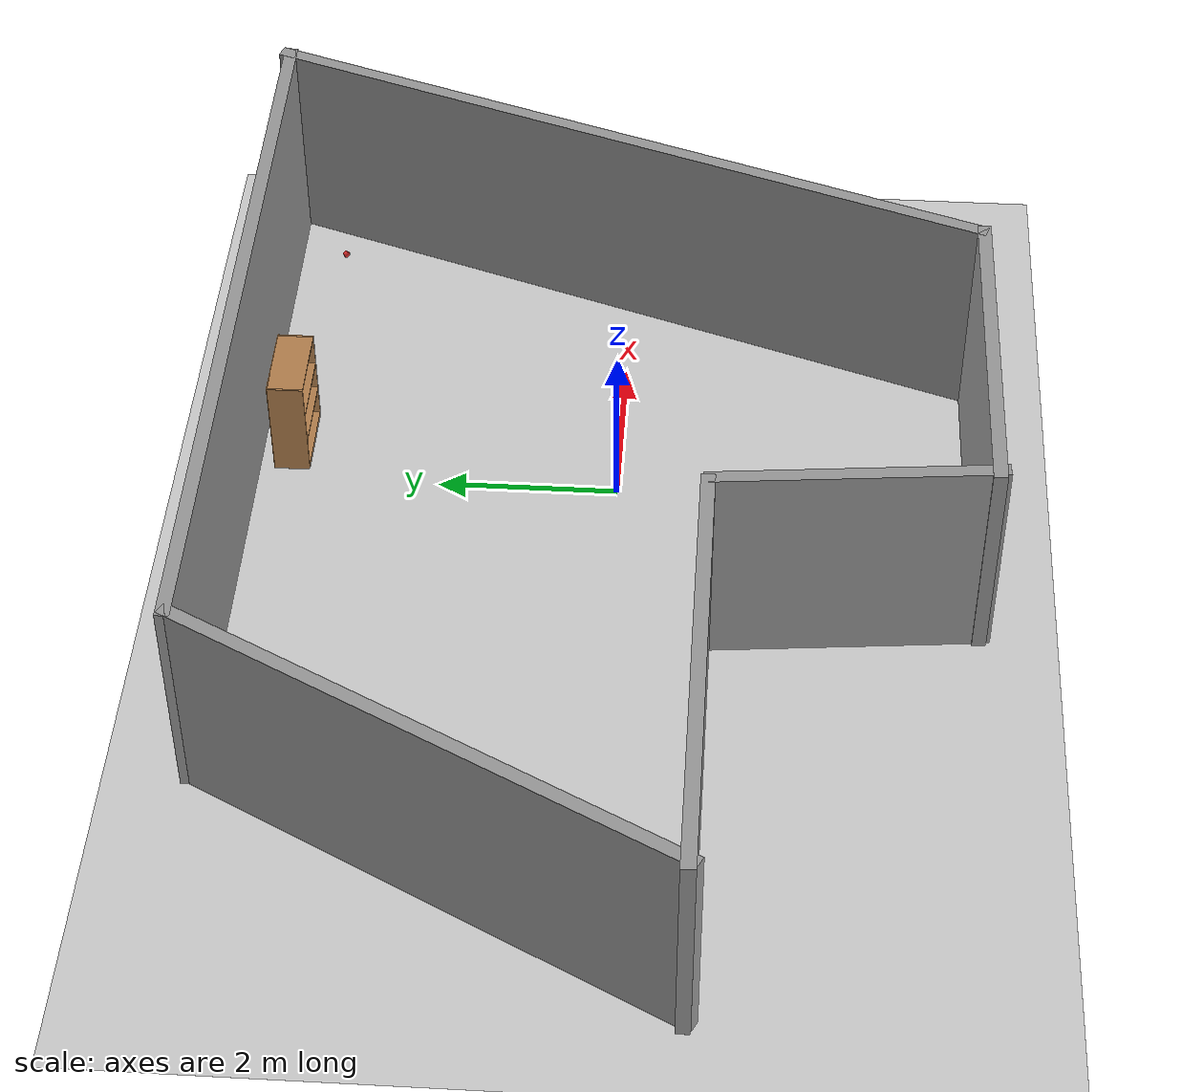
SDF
<sdf version="1.6">
 <world name="default">
  <light name="sun" type="directional">
   <pose>0 0 15 0 -0 0</pose>
   <diffuse>1 1 1 1</diffuse>
   <specular>0.1 0.1 0.1 1</specular>
   <attenuation>
    <range>1000</range>
    <constant>0.9</constant>
    <linear>0.01</linear>
    <quadratic>0.001</quadratic>
   </attenuation>
   <direction>-0.5 0.5 -1</direction>
  </light>
  <model name="ground_plane">
   <static>1</static>
   <link name="link">
    <collision name="collision">
     <geometry><plane><normal>0 0 1</normal><size>100 100</size></plane></geometry>
     <surface><friction><ode><mu>100</mu><mu2>50</mu2></ode></friction></surface>
    </collision>
    <visual name="visual">
     <transparency>1</transparency>
     <cast_shadows>0</cast_shadows>
     <geometry><plane><normal>0 0 1</normal><size>100 100</size></plane></geometry>
     <material>
      <script><uri>file://media/materials/scripts/gazebo.material</uri><name>Gazebo/Grey</name></script>
     </material>
    </visual>
   </link>
  </model>
  <gravity>0 0 -9.8</gravity>
  <magnetic_field>6e-06 2.3e-05 -4.2e-05</magnetic_field>
  <atmosphere type="adiabatic"/>
  <physics name="default_physics" default="0" type="ode">
   <max_step_size>0.001</max_step_size>
   <real_time_factor>1</real_time_factor>
   <real_time_update_rate>1000</real_time_update_rate>
  </physics>
  <scene><ambient>0.4 0.4 0.4 1</ambient><background>0.7 0.7 0.7 1</background><shadows>1</shadows></scene>
  <spherical_coordinates>
   <surface_model>EARTH_WGS84</surface_model>
   <latitude_deg>0</latitude_deg>
   <longitude_deg>0</longitude_deg>
   <elevation>0</elevation>
   <heading_deg>0</heading_deg>
  </spherical_coordinates>
  <model name="Untitled">
   <pose>-1.24149 0.0941 0 0 -0 0</pose>
   <link name="Wall_10">
    <collision name="Wall_10_Collision">
     <geometry><box><size>3.98142 0.15 2.5</size></box></geometry>
     <pose>0 0 1.25 0 -0 0</pose>
    </collision>
    <visual name="Wall_10_Visual">
     <pose>0 0 1.25 0 -0 0</pose>
     <geometry><box><size>3.98142 0.15 2.5</size></box></geometry>
     <material>
      <script><uri>file://media/materials/scripts/gazebo.material</uri><name>Gazebo/Grey</name></script>
      <ambient>1 1 1 1</ambient>
     </material>
    </visual>
    <pose>1.14833 -4.05193 0 0 0 -3.13241</pose>
   </link>
   <link name="Wall_11">
    <collision name="Wall_11_Collision">
     <geometry><box><size>3.10025 0.15 2.5</size></box></geometry>
     <pose>0 0 1.25 0 -0 0</pose>
    </collision>
    <visual name="Wall_11_Visual">
     <pose>0 0 1.25 0 -0 0</pose>
     <geometry><box><size>3.10025 0.15 2.5</size></box></geometry>
     <material>
      <script><uri>file://media/materials/scripts/gazebo.material</uri><name>Gazebo/Grey</name></script>
      <ambient>1 1 1 1</ambient>
     </material>
    </visual>
    <pose>-0.872839 -2.6363 0 0 -0 1.66633</pose>
   </link>
   <link name="Wall_12">
    <collision name="Wall_12_Collision">
     <geometry><box><size>5 0.15 2.5</size></box></geometry>
     <pose>0 0 1.25 0 -0 0</pose>
    </collision>
    <visual name="Wall_12_Visual">
     <pose>0 0 1.25 0 -0 0</pose>
     <geometry><box><size>5 0.15 2.5</size></box></geometry>
     <material>
      <script><uri>file://media/materials/scripts/gazebo.material</uri><name>Gazebo/Grey</name></script>
      <ambient>1 1 1 1</ambient>
     </material>
    </visual>
    <pose>-3.47373 -1.13273 0 0 -0 3.14159</pose>
   </link>
   <link name="Wall_13">
    <collision name="Wall_13_Collision">
     <geometry><box><size>5.96589 0.15 2.5</size></box></geometry>
     <pose>0 0 1.25 0 -0 0</pose>
    </collision>
    <visual name="Wall_13_Visual">
     <pose>0 0 1.25 0 -0 0</pose>
     <geometry><box><size>5.96589 0.15 2.5</size></box></geometry>
     <material>
      <script><uri>file://media/materials/scripts/gazebo.material</uri><name>Gazebo/Grey</name></script>
      <ambient>1 1 1 1</ambient>
     </material>
    </visual>
    <pose>-4.51569 1.4088 0 0 -0 1.08884</pose>
   </link>
   <link name="Wall_8">
    <collision name="Wall_8_Collision">
     <geometry><box><size>9.19669 0.15 2.5</size></box></geometry>
     <pose>0 0 1.25 0 -0 0</pose>
    </collision>
    <visual name="Wall_8_Visual">
     <pose>0 0 1.25 0 -0 0</pose>
     <geometry><box><size>9.19669 0.15 2.5</size></box></geometry>
     <material>
      <script><uri>file://media/materials/scripts/gazebo.material</uri><name>Gazebo/Grey</name></script>
      <ambient>1 1 1 1</ambient>
     </material>
    </visual>
    <pose>1.35522 4.03826 0 0 -0 0.003889</pose>
   </link>
   <link name="Wall_9">
    <collision name="Wall_9_Collision">
     <geometry><box><size>8.71572 0.15 2.5</size></box></geometry>
     <pose>0 0 1.25 0 -0 0</pose>
    </collision>
    <visual name="Wall_9_Visual">
     <pose>0 0 1.25 0 -0 0</pose>
     <geometry><box><size>8.71572 0.15 2.5</size></box></geometry>
     <material>
      <script><uri>file://media/materials/scripts/gazebo.material</uri><name>Gazebo/Grey</name></script>
      <ambient>1 1 1 1</ambient>
     </material>
    </visual>
    <pose>4.4711 0.045936 0 0 0 -1.90557</pose>
   </link>
   <static>1</static>
  </model>
  <model name="bookshelf">
   <static>1</static>
   <link name="link">
    <inertial><mass>1</mass></inertial>
    <collision name="back">
     <pose>0 0.005 0.6 0 -0 0</pose>
     <geometry><box><size>0.9 0.01 1.2</size></box></geometry>
    </collision>
    <visual name="visual1">
     <pose>0 0.005 0.6 0 -0 0</pose>
     <geometry><box><size>0.9 0.01 1.2</size></box></geometry>
     <material>
      <script><uri>file://media/materials/scripts/gazebo.material</uri><name>Gazebo/Wood</name></script>
     </material>
    </visual>
    <collision name="left_side">
     <pose>0.45 -0.195 0.6 0 -0 0</pose>
     <geometry><box><size>0.02 0.4 1.2</size></box></geometry>
    </collision>
    <visual name="visual2">
     <pose>0.45 -0.195 0.6 0 -0 0</pose>
     <geometry><box><size>0.02 0.4 1.2</size></box></geometry>
     <material>
      <script><uri>file://media/materials/scripts/gazebo.material</uri><name>Gazebo/Wood</name></script>
     </material>
    </visual>
    <collision name="right_side">
     <pose>-0.45 -0.195 0.6 0 -0 0</pose>
     <geometry><box><size>0.02 0.4 1.2</size></box></geometry>
    </collision>
    <visual name="visual3">
     <pose>-0.45 -0.195 0.6 0 -0 0</pose>
     <geometry><box><size>0.02 0.4 1.2</size></box></geometry>
     <material>
      <script><uri>file://media/materials/scripts/gazebo.material</uri><name>Gazebo/Wood</name></script>
     </material>
    </visual>
    <collision name="bottom">
     <pose>0 -0.195 0.03 0 -0 0</pose>
     <geometry><box><size>0.88 0.4 0.06</size></box></geometry>
    </collision>
    <visual name="visual4">
     <pose>0 -0.195 0.03 0 -0 0</pose>
     <geometry><box><size>0.88 0.4 0.06</size></box></geometry>
     <material>
      <script><uri>file://media/materials/scripts/gazebo.material</uri><name>Gazebo/Wood</name></script>
     </material>
    </visual>
    <collision name="top">
     <pose>0 -0.195 1.19 0 -0 0</pose>
     <geometry><box><size>0.88 0.4 0.02</size></box></geometry>
    </collision>
    <visual name="visual5">
     <pose>0 -0.195 1.19 0 -0 0</pose>
     <geometry><box><size>0.88 0.4 0.02</size></box></geometry>
     <material>
      <script><uri>file://media/materials/scripts/gazebo.material</uri><name>Gazebo/Wood</name></script>
     </material>
    </visual>
    <collision name="low_shelf">
     <pose>0 -0.195 0.43 0 -0 0</pose>
     <geometry><box><size>0.88 0.4 0.02</size></box></geometry>
    </collision>
    <visual name="visual6">
     <pose>0 -0.195 0.43 0 -0 0</pose>
     <geometry><box><size>0.88 0.4 0.02</size></box></geometry>
     <material>
      <script><uri>file://media/materials/scripts/gazebo.material</uri><name>Gazebo/Wood</name></script>
     </material>
    </visual>
    <collision name="high_shelf">
     <pose>0 -0.195 0.8 0 -0 0</pose>
     <geometry><box><size>0.88 0.4 0.02</size></box></geometry>
    </collision>
    <visual name="visual7">
     <pose>0 -0.195 0.8 0 -0 0</pose>
     <geometry><box><size>0.88 0.4 0.02</size></box></geometry>
     <material>
      <script><uri>file://media/materials/scripts/gazebo.material</uri><name>Gazebo/Wood</name></script>
     </material>
    </visual>
   </link>
   <pose>0.615518 3.88764 0 0 -0 0</pose>
  </model>
  <model name="cricket_ball">
   <link name="link">
    <pose>0 0 0.0375 0 -0 0</pose>
    <inertial>
     <mass>0.1467</mass>
     <inertia>
      <ixx>8.25187e-05</ixx>
      <ixy>0</ixy>
      <ixz>0</ixz>
      <iyy>8.25187e-05</iyy>
      <iyz>0</iyz>
      <izz>8.25187e-05</izz>
     </inertia>
    </inertial>
    <collision name="collision">
     <geometry><sphere><radius>0.0375</radius></sphere></geometry>
     <surface>
      <contact>
       <poissons_ratio>0.347</poissons_ratio>
       <elastic_modulus>8.8e+09</elastic_modulus>
       <ode><kp>100000</kp><kd>100</kd><max_vel>100</max_vel><min_depth>0.001</min_depth></ode>
      </contact>
      <friction>
       <torsional>
        <coefficient>1</coefficient>
        <use_patch_radius>0</use_patch_radius>
        <surface_radius>0.01</surface_radius>
       </torsional>
      </friction>
     </surface>
    </collision>
    <visual name="visual">
     <geometry><sphere><radius>0.0375</radius></sphere></geometry>
     <material>
      <script><uri>file://media/materials/scripts/gazebo.material</uri><name>Gazebo/Red</name></script>
     </material>
    </visual>
    <velocity_decay><linear>0</linear><angular>0.005</angular></velocity_decay>
   </link>
   <pose>3.90911 3.54764 -0.001014 0 -0 0</pose>
  </model>
 </world>
</sdf>
